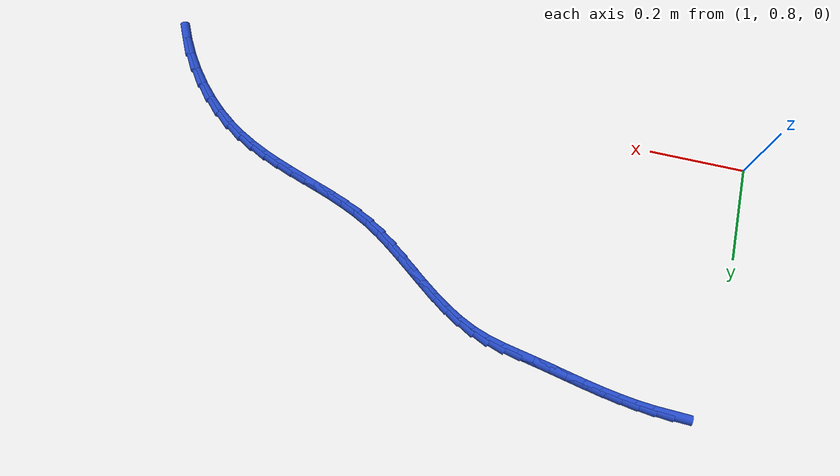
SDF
<sdf version="1.6">
 <world name="default">
  <model name="ground_plane">
   <static>1</static>
   <link name="link">
    <collision name="collision">
     <geometry><plane><normal>0 0 1</normal><size>100 100</size></plane></geometry>
     <surface><friction><ode><mu>100</mu><mu2>50</mu2></ode></friction></surface>
    </collision>
    <visual name="visual">
     <cast_shadows>0</cast_shadows>
     <geometry><plane><normal>0 0 1</normal><size>100 100</size></plane></geometry>
     <material>
      <script><uri>file://media/materials/scripts/gazebo.material</uri><name>Gazebo/WhiteGlow</name></script>
     </material>
    </visual>
   </link>
  </model>
  <model name="line">
   <link name="link_57">
    <pose>1.0826727761082229 1.3337471836033115 0.01 0 1.57 -0.03216895014261414</pose>
    <collision name="collision">
     <geometry><cylinder><radius>0.01</radius><length>0.08</length></cylinder></geometry>
    </collision>
    <visual name="visual">
     <material>
      <script><name>Gazebo/Blue</name><uri>file://media/materials/scripts/gazebo.material</uri></script>
     </material>
     <geometry><cylinder><radius>0.01</radius><length>0.08</length></cylinder></geometry>
    </visual>
   </link>
   <link name="link_58">
    <pose>1.1169862817668372 1.3326429732300953 0.01 0 1.57 -0.08330940805954572</pose>
    <collision name="collision">
     <geometry><cylinder><radius>0.01</radius><length>0.08</length></cylinder></geometry>
    </collision>
    <visual name="visual">
     <material>
      <script><name>Gazebo/Blue</name><uri>file://media/materials/scripts/gazebo.material</uri></script>
     </material>
     <geometry><cylinder><radius>0.01</radius><length>0.08</length></cylinder></geometry>
    </visual>
   </link>
   <link name="link_59">
    <pose>1.1510822725551149 1.3297958666298797 0.01 0 1.57 -0.125729789281232</pose>
    <collision name="collision">
     <geometry><cylinder><radius>0.01</radius><length>0.08</length></cylinder></geometry>
    </collision>
    <visual name="visual">
     <material>
      <script><name>Gazebo/Blue</name><uri>file://media/materials/scripts/gazebo.material</uri></script>
     </material>
     <geometry><cylinder><radius>0.01</radius><length>0.08</length></cylinder></geometry>
    </visual>
   </link>
   <link name="link_60">
    <pose>1.185008862121938 1.3255076638826624 0.01 0 1.57 -0.15919314802991205</pose>
    <collision name="collision">
     <geometry><cylinder><radius>0.01</radius><length>0.08</length></cylinder></geometry>
    </collision>
    <visual name="visual">
     <material>
      <script><name>Gazebo/Blue</name><uri>file://media/materials/scripts/gazebo.material</uri></script>
     </material>
     <geometry><cylinder><radius>0.01</radius><length>0.08</length></cylinder></geometry>
    </visual>
   </link>
   <link name="link_61">
    <pose>1.2188141641161887 1.3200801650684408 0.01 0 1.57 -0.18363541465684052</pose>
    <collision name="collision">
     <geometry><cylinder><radius>0.01</radius><length>0.08</length></cylinder></geometry>
    </collision>
    <visual name="visual">
     <material>
      <script><name>Gazebo/Blue</name><uri>file://media/materials/scripts/gazebo.material</uri></script>
     </material>
     <geometry><cylinder><radius>0.01</radius><length>0.08</length></cylinder></geometry>
    </visual>
   </link>
   <link name="link_62">
    <pose>1.2525462921867496 1.3138151702672125 0.01 0 1.57 -0.19908594524107748</pose>
    <collision name="collision">
     <geometry><cylinder><radius>0.01</radius><length>0.08</length></cylinder></geometry>
    </collision>
    <visual name="visual">
     <material>
      <script><name>Gazebo/Blue</name><uri>file://media/materials/scripts/gazebo.material</uri></script>
     </material>
     <geometry><cylinder><radius>0.01</radius><length>0.08</length></cylinder></geometry>
    </visual>
   </link>
   <link name="link_63">
    <pose>1.2862533599825043 1.3070144795589753 0.01 0 1.57 -0.20560785737708023</pose>
    <collision name="collision">
     <geometry><cylinder><radius>0.01</radius><length>0.08</length></cylinder></geometry>
    </collision>
    <visual name="visual">
     <material>
      <script><name>Gazebo/Blue</name><uri>file://media/materials/scripts/gazebo.material</uri></script>
     </material>
     <geometry><cylinder><radius>0.01</radius><length>0.08</length></cylinder></geometry>
    </visual>
   </link>
   <link name="link_64">
    <pose>1.3199834811523343 1.2999798930237267 0.01 0 1.57 -0.2032607247363708</pose>
    <collision name="collision">
     <geometry><cylinder><radius>0.01</radius><length>0.08</length></cylinder></geometry>
    </collision>
    <visual name="visual">
     <material>
      <script><name>Gazebo/Blue</name><uri>file://media/materials/scripts/gazebo.material</uri></script>
     </material>
     <geometry><cylinder><radius>0.01</radius><length>0.08</length></cylinder></geometry>
    </visual>
   </link>
   <link name="link_65">
    <pose>1.3537847693451224 1.2930132107414642 0.01 0 1.57 -0.19248460920277682</pose>
    <collision name="collision">
     <geometry><cylinder><radius>0.01</radius><length>0.08</length></cylinder></geometry>
    </collision>
    <visual name="visual">
     <material>
      <script><name>Gazebo/Blue</name><uri>file://media/materials/scripts/gazebo.material</uri></script>
     </material>
     <geometry><cylinder><radius>0.01</radius><length>0.08</length></cylinder></geometry>
    </visual>
   </link>
   <link name="link_66">
    <pose>1.3877007568035449 1.2864030667996744 0.01 0 1.57 -0.1939090116015446</pose>
    <collision name="collision">
     <geometry><cylinder><radius>0.01</radius><length>0.08</length></cylinder></geometry>
    </collision>
    <visual name="visual">
     <material>
      <script><name>Gazebo/Blue</name><uri>file://media/materials/scripts/gazebo.material</uri></script>
     </material>
     <geometry><cylinder><radius>0.01</radius><length>0.08</length></cylinder></geometry>
    </visual>
   </link>
   <link name="link_67">
    <pose>1.4215383746731576 1.2797581537718576 0.01 0 1.57 -0.23819893880994616</pose>
    <collision name="collision">
     <geometry><cylinder><radius>0.01</radius><length>0.08</length></cylinder></geometry>
    </collision>
    <visual name="visual">
     <material>
      <script><name>Gazebo/Blue</name><uri>file://media/materials/scripts/gazebo.material</uri></script>
     </material>
     <geometry><cylinder><radius>0.01</radius><length>0.08</length></cylinder></geometry>
    </visual>
   </link>
   <link name="link_68">
    <pose>1.454758289191289 1.2716920721173572 0.01 0 1.57 -0.3280379708383834</pose>
    <collision name="collision">
     <geometry><cylinder><radius>0.01</radius><length>0.08</length></cylinder></geometry>
    </collision>
    <visual name="visual">
     <material>
      <script><name>Gazebo/Blue</name><uri>file://media/materials/scripts/gazebo.material</uri></script>
     </material>
     <geometry><cylinder><radius>0.01</radius><length>0.08</length></cylinder></geometry>
    </visual>
   </link>
   <link name="link_69">
    <pose>1.486810810175451 1.2607835057184145 0.01 0 1.57 -0.4318677894783215</pose>
    <collision name="collision">
     <geometry><cylinder><radius>0.01</radius><length>0.08</length></cylinder></geometry>
    </collision>
    <visual name="visual">
     <material>
      <script><name>Gazebo/Blue</name><uri>file://media/materials/scripts/gazebo.material</uri></script>
     </material>
     <geometry><cylinder><radius>0.01</radius><length>0.08</length></cylinder></geometry>
    </visual>
   </link>
   <link name="link_70">
    <pose>1.5175388465289499 1.246621457335257 0.01 0 1.57 -0.5161707550218443</pose>
    <collision name="collision">
     <geometry><cylinder><radius>0.01</radius><length>0.08</length></cylinder></geometry>
    </collision>
    <visual name="visual">
     <material>
      <script><name>Gazebo/Blue</name><uri>file://media/materials/scripts/gazebo.material</uri></script>
     </material>
     <geometry><cylinder><radius>0.01</radius><length>0.08</length></cylinder></geometry>
    </visual>
   </link>
   <link name="link_71">
    <pose>1.5471767560998306 1.2298022888202567 0.01 0 1.57 -0.579225018899423</pose>
    <collision name="collision">
     <geometry><cylinder><radius>0.01</radius><length>0.08</length></cylinder></geometry>
    </collision>
    <visual name="visual">
     <material>
      <script><name>Gazebo/Blue</name><uri>file://media/materials/scripts/gazebo.material</uri></script>
     </material>
     <geometry><cylinder><radius>0.01</radius><length>0.08</length></cylinder></geometry>
    </visual>
   </link>
   <link name="link_72">
    <pose>1.5759758265140758 1.2109659293056565 0.01 0 1.57 -0.6217157622878199</pose>
    <collision name="collision">
     <geometry><cylinder><radius>0.01</radius><length>0.08</length></cylinder></geometry>
    </collision>
    <visual name="visual">
     <material>
      <script><name>Gazebo/Blue</name><uri>file://media/materials/scripts/gazebo.material</uri></script>
     </material>
     <geometry><cylinder><radius>0.01</radius><length>0.08</length></cylinder></geometry>
    </visual>
   </link>
   <link name="link_73">
    <pose>1.6041873453976654 1.1907523079237008 0.01 0 1.57 -0.6445223161636893</pose>
    <collision name="collision">
     <geometry><cylinder><radius>0.01</radius><length>0.08</length></cylinder></geometry>
    </collision>
    <visual name="visual">
     <material>
      <script><name>Gazebo/Blue</name><uri>file://media/materials/scripts/gazebo.material</uri></script>
     </material>
     <geometry><cylinder><radius>0.01</radius><length>0.08</length></cylinder></geometry>
    </visual>
   </link>
   <link name="link_74">
    <pose>1.6320626003765817 1.1698013538066325 0.01 0 1.57 -0.6482203254890119</pose>
    <collision name="collision">
     <geometry><cylinder><radius>0.01</radius><length>0.08</length></cylinder></geometry>
    </collision>
    <visual name="visual">
     <material>
      <script><name>Gazebo/Blue</name><uri>file://media/materials/scripts/gazebo.material</uri></script>
     </material>
     <geometry><cylinder><radius>0.01</radius><length>0.08</length></cylinder></geometry>
    </visual>
   </link>
   <link name="link_75">
    <pose>1.6598528790768055 1.1487529960866965 0.01 0 1.57 -0.6328496119055224</pose>
    <collision name="collision">
     <geometry><cylinder><radius>0.01</radius><length>0.08</length></cylinder></geometry>
    </collision>
    <visual name="visual">
     <material>
      <script><name>Gazebo/Blue</name><uri>file://media/materials/scripts/gazebo.material</uri></script>
     </material>
     <geometry><cylinder><radius>0.01</radius><length>0.08</length></cylinder></geometry>
    </visual>
   </link>
   <link name="link_76">
    <pose>1.6878094691243184 1.1282471638961358 0.01 0 1.57 -0.5978735056712724</pose>
    <collision name="collision">
     <geometry><cylinder><radius>0.01</radius><length>0.08</length></cylinder></geometry>
    </collision>
    <visual name="visual">
     <material>
      <script><name>Gazebo/Blue</name><uri>file://media/materials/scripts/gazebo.material</uri></script>
     </material>
     <geometry><cylinder><radius>0.01</radius><length>0.08</length></cylinder></geometry>
    </visual>
   </link>
   <link name="link_77">
    <pose>1.7161836581451022 1.1089237863671944 0.01 0 1.57 -0.5423218843281231</pose>
    <collision name="collision">
     <geometry><cylinder><radius>0.01</radius><length>0.08</length></cylinder></geometry>
    </collision>
    <visual name="visual">
     <material>
      <script><name>Gazebo/Blue</name><uri>file://media/materials/scripts/gazebo.material</uri></script>
     </material>
     <geometry><cylinder><radius>0.01</radius><length>0.08</length></cylinder></geometry>
    </visual>
   </link>
   <link name="link_78">
    <pose>1.7452267108676567 1.091422727361043 0.01 0 1.57 -0.4724702344543096</pose>
    <collision name="collision">
     <geometry><cylinder><radius>0.01</radius><length>0.08</length></cylinder></geometry>
    </collision>
    <visual name="visual">
     <material>
      <script><name>Gazebo/Blue</name><uri>file://media/materials/scripts/gazebo.material</uri></script>
     </material>
     <geometry><cylinder><radius>0.01</radius><length>0.08</length></cylinder></geometry>
    </visual>
   </link>
   <link name="link_79">
    <pose>1.7751081974218335 1.076150973850959 0.01 0 1.57 -0.4122229489539725</pose>
    <collision name="collision">
     <geometry><cylinder><radius>0.01</radius><length>0.08</length></cylinder></geometry>
    </collision>
    <visual name="visual">
     <material>
      <script><name>Gazebo/Blue</name><uri>file://media/materials/scripts/gazebo.material</uri></script>
     </material>
     <geometry><cylinder><radius>0.01</radius><length>0.08</length></cylinder></geometry>
    </visual>
   </link>
   <link name="link_80">
    <pose>1.8057325328658667 1.0627596673943875 0.01 0 1.57 -0.36733882346360125</pose>
    <collision name="collision">
     <geometry><cylinder><radius>0.01</radius><length>0.08</length></cylinder></geometry>
    </collision>
    <visual name="visual">
     <material>
      <script><name>Gazebo/Blue</name><uri>file://media/materials/scripts/gazebo.material</uri></script>
     </material>
     <geometry><cylinder><radius>0.01</radius><length>0.08</length></cylinder></geometry>
    </visual>
   </link>
   <link name="link_81">
    <pose>1.8369504312103866 1.0507468704829632 0.01 0 1.57 -0.33820641995628536</pose>
    <collision name="collision">
     <geometry><cylinder><radius>0.01</radius><length>0.08</length></cylinder></geometry>
    </collision>
    <visual name="visual">
     <material>
      <script><name>Gazebo/Blue</name><uri>file://media/materials/scripts/gazebo.material</uri></script>
     </material>
     <geometry><cylinder><radius>0.01</radius><length>0.08</length></cylinder></geometry>
    </visual>
   </link>
   <link name="link_82">
    <pose>1.868612606466022 1.0396106456083227 0.01 0 1.57 -0.3248228074280885</pose>
    <collision name="collision">
     <geometry><cylinder><radius>0.01</radius><length>0.08</length></cylinder></geometry>
    </collision>
    <visual name="visual">
     <material>
      <script><name>Gazebo/Blue</name><uri>file://media/materials/scripts/gazebo.material</uri></script>
     </material>
     <geometry><cylinder><radius>0.01</radius><length>0.08</length></cylinder></geometry>
    </visual>
   </link>
   <link name="link_83">
    <pose>1.9005697726434025 1.0288490552621008 0.01 0 1.57 -0.32701003931935757</pose>
    <collision name="collision">
     <geometry><cylinder><radius>0.01</radius><length>0.08</length></cylinder></geometry>
    </collision>
    <visual name="visual">
     <material>
      <script><name>Gazebo/Blue</name><uri>file://media/materials/scripts/gazebo.material</uri></script>
     </material>
     <geometry><cylinder><radius>0.01</radius><length>0.08</length></cylinder></geometry>
    </visual>
   </link>
   <link name="link_84">
    <pose>1.932672643753158 1.0179601619359342 0.01 0 1.57 -0.3445179273334465</pose>
    <collision name="collision">
     <geometry><cylinder><radius>0.01</radius><length>0.08</length></cylinder></geometry>
    </collision>
    <visual name="visual">
     <material>
      <script><name>Gazebo/Blue</name><uri>file://media/materials/scripts/gazebo.material</uri></script>
     </material>
     <geometry><cylinder><radius>0.01</radius><length>0.08</length></cylinder></geometry>
    </visual>
   </link>
   <link name="link_85">
    <pose>1.9647719338059184 1.0064420281214574 0.01 0 1.57 -0.37701352866186216</pose>
    <collision name="collision">
     <geometry><cylinder><radius>0.01</radius><length>0.08</length></cylinder></geometry>
    </collision>
    <visual name="visual">
     <material>
      <script><name>Gazebo/Blue</name><uri>file://media/materials/scripts/gazebo.material</uri></script>
     </material>
     <geometry><cylinder><radius>0.01</radius><length>0.08</length></cylinder></geometry>
    </visual>
   </link>
   <link name="link_86">
    <pose>1.9967183568123126 0.9937927163103073 0.01 0 1.57 -0.42397040343252235</pose>
    <collision name="collision">
     <geometry><cylinder><radius>0.01</radius><length>0.08</length></cylinder></geometry>
    </collision>
    <visual name="visual">
     <material>
      <script><name>Gazebo/Blue</name><uri>file://media/materials/scripts/gazebo.material</uri></script>
     </material>
     <geometry><cylinder><radius>0.01</radius><length>0.08</length></cylinder></geometry>
    </visual>
   </link>
   <link name="link_87">
    <pose>2.0283626267829704 0.9795102889941191 0.01 0 1.57 -0.48448297212912206</pose>
    <collision name="collision">
     <geometry><cylinder><radius>0.01</radius><length>0.08</length></cylinder></geometry>
    </collision>
    <visual name="visual">
     <material>
      <script><name>Gazebo/Blue</name><uri>file://media/materials/scripts/gazebo.material</uri></script>
     </material>
     <geometry><cylinder><radius>0.01</radius><length>0.08</length></cylinder></geometry>
    </visual>
   </link>
   <link name="link_88">
    <pose>2.0595554577285218 0.9630928086645278 0.01 0 1.57 -0.5570559382078499</pose>
    <collision name="collision">
     <geometry><cylinder><radius>0.01</radius><length>0.08</length></cylinder></geometry>
    </collision>
    <visual name="visual">
     <material>
      <script><name>Gazebo/Blue</name><uri>file://media/materials/scripts/gazebo.material</uri></script>
     </material>
     <geometry><cylinder><radius>0.01</radius><length>0.08</length></cylinder></geometry>
    </visual>
   </link>
   <link name="link_89">
    <pose>2.090147563659596 0.94403833781317 0.01 0 1.57 -0.6394529110999114</pose>
    <collision name="collision">
     <geometry><cylinder><radius>0.01</radius><length>0.08</length></cylinder></geometry>
    </collision>
    <visual name="visual">
     <material>
      <script><name>Gazebo/Blue</name><uri>file://media/materials/scripts/gazebo.material</uri></script>
     </material>
     <geometry><cylinder><radius>0.01</radius><length>0.08</length></cylinder></geometry>
    </visual>
   </link>
   <link name="link_90">
    <pose>2.1199896531510722 0.9218449607836966 0.01 0 1.57 -0.7257883118115407</pose>
    <collision name="collision">
     <geometry><cylinder><radius>0.01</radius><length>0.08</length></cylinder></geometry>
    </collision>
    <visual name="visual">
     <material>
      <script><name>Gazebo/Blue</name><uri>file://media/materials/scripts/gazebo.material</uri></script>
     </material>
     <geometry><cylinder><radius>0.01</radius><length>0.08</length></cylinder></geometry>
    </visual>
   </link>
   <link name="link_91">
    <pose>2.148884074950968 0.8962051710832628 0.01 0 1.57 -0.8056877120220719</pose>
    <collision name="collision">
     <geometry><cylinder><radius>0.01</radius><length>0.08</length></cylinder></geometry>
    </collision>
    <visual name="visual">
     <material>
      <script><name>Gazebo/Blue</name><uri>file://media/materials/scripts/gazebo.material</uri></script>
     </material>
     <geometry><cylinder><radius>0.01</radius><length>0.08</length></cylinder></geometry>
    </visual>
   </link>
   <link name="link_92">
    <pose>2.1764669632587186 0.8674796538451668 0.01 0 1.57 -0.880171281604519</pose>
    <collision name="collision">
     <geometry><cylinder><radius>0.01</radius><length>0.08</length></cylinder></geometry>
    </collision>
    <visual name="visual">
     <material>
      <script><name>Gazebo/Blue</name><uri>file://media/materials/scripts/gazebo.material</uri></script>
     </material>
     <geometry><cylinder><radius>0.01</radius><length>0.08</length></cylinder></geometry>
    </visual>
   </link>
   <link name="link_93">
    <pose>2.202338769790532 0.8361725397476423 0.01 0 1.57 -0.9522338450472393</pose>
    <collision name="collision">
     <geometry><cylinder><radius>0.01</radius><length>0.08</length></cylinder></geometry>
    </collision>
    <visual name="visual">
     <material>
      <script><name>Gazebo/Blue</name><uri>file://media/materials/scripts/gazebo.material</uri></script>
     </material>
     <geometry><cylinder><radius>0.01</radius><length>0.08</length></cylinder></geometry>
    </visual>
   </link>
   <link name="link_94">
    <pose>2.226099946262609 0.8027879594689187 0.01 0 1.57 -1.0245865483274392</pose>
    <collision name="collision">
     <geometry><cylinder><radius>0.01</radius><length>0.08</length></cylinder></geometry>
    </collision>
    <visual name="visual">
     <material>
      <script><name>Gazebo/Blue</name><uri>file://media/materials/scripts/gazebo.material</uri></script>
     </material>
     <geometry><cylinder><radius>0.01</radius><length>0.08</length></cylinder></geometry>
    </visual>
   </link>
   <link name="link_95">
    <pose>2.247350944391157 0.7678300436872287 0.01 0 1.57 -1.0998982371979684</pose>
    <collision name="collision">
     <geometry><cylinder><radius>0.01</radius><length>0.08</length></cylinder></geometry>
    </collision>
    <visual name="visual">
     <material>
      <script><name>Gazebo/Blue</name><uri>file://media/materials/scripts/gazebo.material</uri></script>
     </material>
     <geometry><cylinder><radius>0.01</radius><length>0.08</length></cylinder></geometry>
    </visual>
   </link>
  </model>
 </world>
</sdf>
